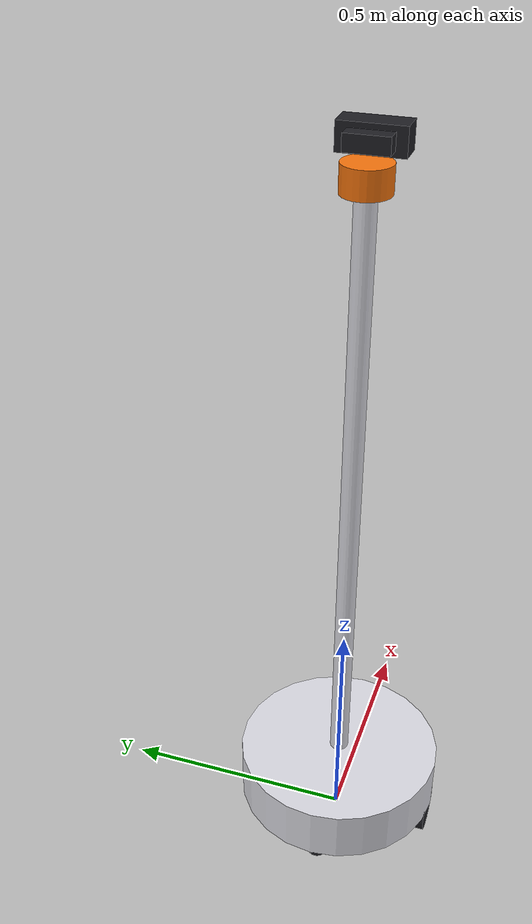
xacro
<?xml version="1.0"?>
<!-- Differential-drive proctoring robot with a mast-mounted pan/tilt camera. -->
<robot name="proctor_bot" xmlns:xacro="http://www.ros.org/wiki/xacro">

  <xacro:arg name="cam_width" default="1280"/>
  <xacro:arg name="cam_height" default="720"/>
  <xacro:arg name="cam_fps" default="15"/>

  <xacro:property name="base_radius" value="0.22"/>
  <xacro:property name="base_height" value="0.12"/>
  <xacro:property name="base_clearance" value="0.02"/>
  <xacro:property name="wheel_radius" value="0.05"/>
  <xacro:property name="wheel_width" value="0.03"/>
  <xacro:property name="wheel_separation" value="0.40"/>
  <xacro:property name="caster_radius" value="0.025"/>
  <xacro:property name="mast_height" value="1.25"/>

  <material name="body_grey"><color rgba="0.85 0.85 0.88 1"/></material>
  <material name="dark"><color rgba="0.12 0.12 0.14 1"/></material>
  <material name="accent"><color rgba="0.95 0.45 0.05 1"/></material>

  <xacro:macro name="cylinder_inertia" params="m r h">
    <inertia ixx="${m*(3*r*r+h*h)/12}" ixy="0" ixz="0"
             iyy="${m*(3*r*r+h*h)/12}" iyz="0" izz="${m*r*r/2}"/>
  </xacro:macro>
  <xacro:macro name="box_inertia" params="m x y z">
    <inertia ixx="${m*(y*y+z*z)/12}" ixy="0" ixz="0"
             iyy="${m*(x*x+z*z)/12}" iyz="0" izz="${m*(x*x+y*y)/12}"/>
  </xacro:macro>

  <!-- ===================== Base ===================== -->
  <link name="base_footprint"/>

  <link name="base_link">
    <visual>
      <origin xyz="0 0 ${base_clearance + base_height/2}"/>
      <geometry><cylinder radius="${base_radius}" length="${base_height}"/></geometry>
      <material name="body_grey"/>
    </visual>
    <collision>
      <origin xyz="0 0 ${base_clearance + base_height/2}"/>
      <geometry><cylinder radius="${base_radius}" length="${base_height}"/></geometry>
    </collision>
    <inertial>
      <origin xyz="0 0 ${base_clearance + base_height/2}"/>
      <mass value="8.0"/>
      <xacro:cylinder_inertia m="8.0" r="${base_radius}" h="${base_height}"/>
    </inertial>
  </link>
  <joint name="base_joint" type="fixed">
    <parent link="base_footprint"/>
    <child link="base_link"/>
    <origin xyz="0 0 ${wheel_radius}"/>
  </joint>

  <xacro:macro name="wheel" params="side y">
    <link name="${side}_wheel">
      <visual>
        <origin rpy="${-pi/2} 0 0"/>
        <geometry><cylinder radius="${wheel_radius}" length="${wheel_width}"/></geometry>
        <material name="dark"/>
      </visual>
      <collision>
        <origin rpy="${-pi/2} 0 0"/>
        <geometry><cylinder radius="${wheel_radius}" length="${wheel_width}"/></geometry>
      </collision>
      <inertial>
        <mass value="0.3"/>
        <xacro:cylinder_inertia m="0.3" r="${wheel_radius}" h="${wheel_width}"/>
      </inertial>
    </link>
    <joint name="${side}_wheel_joint" type="continuous">
      <parent link="base_link"/>
      <child link="${side}_wheel"/>
      <origin xyz="0 ${y} 0"/>
      <axis xyz="0 1 0"/>
    </joint>
    <gazebo reference="${side}_wheel">
      <mu1>1.0</mu1>
      <mu2>1.0</mu2>
    </gazebo>
  </xacro:macro>
  <xacro:wheel side="left" y="${wheel_separation/2}"/>
  <xacro:wheel side="right" y="${-wheel_separation/2}"/>

  <xacro:macro name="caster" params="name x">
    <link name="${name}_caster">
      <visual>
        <geometry><sphere radius="${caster_radius}"/></geometry>
        <material name="dark"/>
      </visual>
      <collision>
        <geometry><sphere radius="${caster_radius}"/></geometry>
      </collision>
      <inertial>
        <mass value="0.05"/>
        <inertia ixx="1e-5" ixy="0" ixz="0" iyy="1e-5" iyz="0" izz="1e-5"/>
      </inertial>
    </link>
    <joint name="${name}_caster_joint" type="fixed">
      <parent link="base_link"/>
      <child link="${name}_caster"/>
      <origin xyz="${x} 0 ${caster_radius - wheel_radius}"/>
    </joint>
    <gazebo reference="${name}_caster">
      <mu1>0.0</mu1>
      <mu2>0.0</mu2>
    </gazebo>
  </xacro:macro>
  <xacro:caster name="front" x="0.16"/>
  <xacro:caster name="rear" x="-0.16"/>

  <!-- ===================== Mast ===================== -->
  <link name="mast_link">
    <visual>
      <origin xyz="0 0 ${mast_height/2}"/>
      <geometry><cylinder radius="0.02" length="${mast_height}"/></geometry>
      <material name="body_grey"/>
    </visual>
    <collision>
      <origin xyz="0 0 ${mast_height/2}"/>
      <geometry><cylinder radius="0.02" length="${mast_height}"/></geometry>
    </collision>
    <inertial>
      <origin xyz="0 0 ${mast_height/2}"/>
      <mass value="0.5"/>
      <xacro:cylinder_inertia m="0.5" r="0.02" h="${mast_height}"/>
    </inertial>
  </link>
  <joint name="mast_joint" type="fixed">
    <parent link="base_link"/>
    <child link="mast_link"/>
    <origin xyz="0 0 ${base_clearance + base_height}"/>
  </joint>

  <!-- ===================== Pan / tilt head ===================== -->
  <link name="camera_pan_link">
    <visual>
      <origin xyz="0 0 0.025"/>
      <geometry><cylinder radius="0.045" length="0.05"/></geometry>
      <material name="accent"/>
    </visual>
    <inertial>
      <origin xyz="0 0 0.025"/>
      <mass value="0.2"/>
      <xacro:cylinder_inertia m="0.2" r="0.045" h="0.05"/>
    </inertial>
  </link>
  <joint name="camera_pan_joint" type="continuous">
    <parent link="mast_link"/>
    <child link="camera_pan_link"/>
    <origin xyz="0 0 ${mast_height}"/>
    <axis xyz="0 0 1"/>
    <dynamics damping="0.05"/>
  </joint>

  <link name="camera_tilt_link">
    <visual>
      <geometry><box size="0.03 0.08 0.03"/></geometry>
      <material name="dark"/>
    </visual>
    <inertial>
      <mass value="0.1"/>
      <xacro:box_inertia m="0.1" x="0.03" y="0.08" z="0.03"/>
    </inertial>
  </link>
  <!-- Positive tilt pitches the camera down. -->
  <joint name="camera_tilt_joint" type="revolute">
    <parent link="camera_pan_link"/>
    <child link="camera_tilt_link"/>
    <origin xyz="0 0 0.08"/>
    <axis xyz="0 1 0"/>
    <limit lower="-0.5" upper="1.3" effort="10" velocity="3"/>
    <dynamics damping="0.05"/>
  </joint>

  <link name="camera_link">
    <visual>
      <geometry><box size="0.05 0.12 0.05"/></geometry>
      <material name="dark"/>
    </visual>
    <visual>
      <origin xyz="0.03 0 0" rpy="0 ${pi/2} 0"/>
      <geometry><cylinder radius="0.018" length="0.02"/></geometry>
      <material name="accent"/>
    </visual>
    <inertial>
      <mass value="0.15"/>
      <xacro:box_inertia m="0.15" x="0.05" y="0.12" z="0.05"/>
    </inertial>
  </link>
  <joint name="camera_joint" type="fixed">
    <parent link="camera_tilt_link"/>
    <child link="camera_link"/>
    <origin xyz="0.04 0 0"/>
  </joint>

  <link name="camera_optical_frame"/>
  <joint name="camera_optical_joint" type="fixed">
    <parent link="camera_link"/>
    <child link="camera_optical_frame"/>
    <origin xyz="0.04 0 0" rpy="${-pi/2} 0 ${-pi/2}"/>
  </joint>

  <!-- ===================== Gazebo sensors & systems ===================== -->
  <gazebo reference="camera_link">
    <sensor name="proctor_camera" type="camera">
      <always_on>true</always_on>
      <visualize>true</visualize>
      <update_rate>$(arg cam_fps)</update_rate>
      <topic>/proctor/camera/image</topic>
      <gz_frame_id>camera_optical_frame</gz_frame_id>
      <camera name="proctor_cam">
        <horizontal_fov>1.2</horizontal_fov>
        <image>
          <width>$(arg cam_width)</width>
          <height>$(arg cam_height)</height>
          <format>R8G8B8</format>
        </image>
        <clip><near>0.05</near><far>30</far></clip>
        <noise><type>gaussian</type><mean>0.0</mean><stddev>0.005</stddev></noise>
      </camera>
    </sensor>
  </gazebo>

  <gazebo>
    <plugin filename="gz-sim-diff-drive-system" name="gz::sim::systems::DiffDrive">
      <left_joint>left_wheel_joint</left_joint>
      <right_joint>right_wheel_joint</right_joint>
      <wheel_separation>${wheel_separation}</wheel_separation>
      <wheel_radius>${wheel_radius}</wheel_radius>
      <max_linear_velocity>0.6</max_linear_velocity>
      <min_linear_velocity>-0.6</min_linear_velocity>
      <max_angular_velocity>1.5</max_angular_velocity>
      <min_angular_velocity>-1.5</min_angular_velocity>
      <max_linear_acceleration>0.8</max_linear_acceleration>
      <min_linear_acceleration>-0.8</min_linear_acceleration>
      <max_angular_acceleration>3.0</max_angular_acceleration>
      <min_angular_acceleration>-3.0</min_angular_acceleration>
      <topic>/model/proctor_bot/cmd_vel</topic>
      <!-- Wheel odometry kept off /tf; ground-truth odometry below is used instead. -->
      <odom_topic>/model/proctor_bot/wheel_odom</odom_topic>
      <tf_topic>/model/proctor_bot/wheel_odom_tf</tf_topic>
      <frame_id>odom</frame_id>
      <child_frame_id>base_footprint</child_frame_id>
      <odom_publish_frequency>30</odom_publish_frequency>
    </plugin>

    <plugin filename="gz-sim-odometry-publisher-system" name="gz::sim::systems::OdometryPublisher">
      <odom_frame>odom</odom_frame>
      <robot_base_frame>base_footprint</robot_base_frame>
      <odom_topic>/model/proctor_bot/odometry</odom_topic>
      <tf_topic>/model/proctor_bot/odometry_tf</tf_topic>
      <odom_publish_frequency>30</odom_publish_frequency>
      <dimensions>2</dimensions>
    </plugin>

    <plugin filename="gz-sim-joint-state-publisher-system" name="gz::sim::systems::JointStatePublisher">
      <topic>/model/proctor_bot/joint_states</topic>
    </plugin>

    <plugin filename="gz-sim-joint-position-controller-system" name="gz::sim::systems::JointPositionController">
      <joint_name>camera_pan_joint</joint_name>
      <topic>/model/proctor_bot/camera_pan_cmd</topic>
      <use_velocity_commands>true</use_velocity_commands>
      <p_gain>12</p_gain>
      <i_gain>0</i_gain>
      <d_gain>0</d_gain>
      <cmd_max>5</cmd_max>
      <cmd_min>-5</cmd_min>
    </plugin>

    <plugin filename="gz-sim-joint-position-controller-system" name="gz::sim::systems::JointPositionController">
      <joint_name>camera_tilt_joint</joint_name>
      <topic>/model/proctor_bot/camera_tilt_cmd</topic>
      <initial_position>0.3</initial_position>
      <use_velocity_commands>true</use_velocity_commands>
      <p_gain>12</p_gain>
      <i_gain>0</i_gain>
      <d_gain>0</d_gain>
      <cmd_max>3</cmd_max>
      <cmd_min>-3</cmd_min>
    </plugin>
  </gazebo>
</robot>
